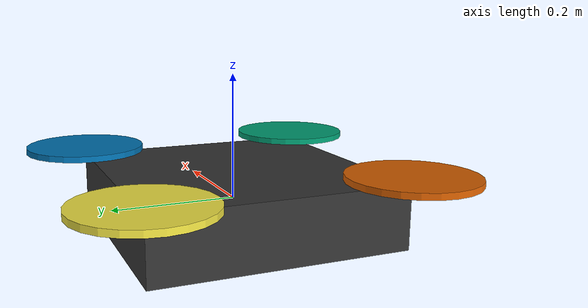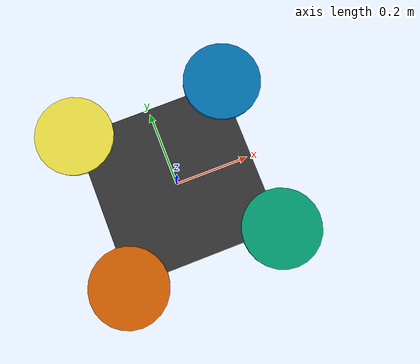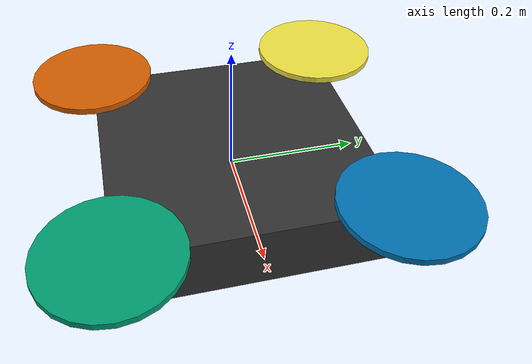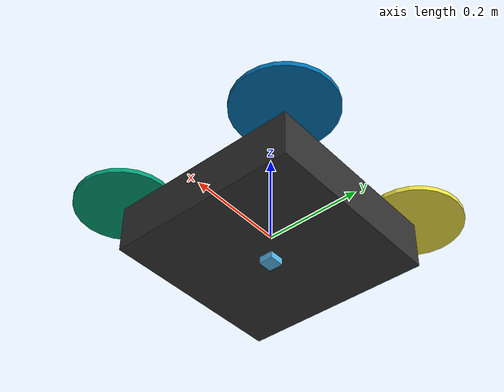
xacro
<?xml version="1.0"?>
<robot name="swarm_drone" xmlns:xacro="http://ros.org/wiki/xacro">

  <xacro:arg name="camera_rate" default="30"/>
  <xacro:arg name="camera_width" default="320"/>
  <xacro:arg name="camera_height" default="240"/>

  <link name="base_link">
    <inertial>
      <mass value="1.5"/>
      <origin xyz="0 0 0" rpy="0 0 0"/>
      <inertia ixx="0.02" ixy="0.0" ixz="0.0" iyy="0.02" iyz="0.0" izz="0.04"/>
    </inertial>
    <visual>
      <geometry>
        <box size="0.4 0.4 0.1"/>
      </geometry>
      <material name="dark_grey"><color rgba="0.2 0.2 0.2 1.0"/></material>
    </visual>
    <collision>
      <geometry><box size="0.4 0.4 0.1"/></geometry>
    </collision>
    <collision name="leg_fl">
      <origin xyz="0.15 0.15 -0.11" rpy="0 0 0"/>
      <geometry><box size="0.02 0.02 0.12"/></geometry>
    </collision>
    <collision name="leg_fr">
      <origin xyz="0.15 -0.15 -0.11" rpy="0 0 0"/>
      <geometry><box size="0.02 0.02 0.12"/></geometry>
    </collision>
    <collision name="leg_rl">
      <origin xyz="-0.15 0.15 -0.11" rpy="0 0 0"/>
      <geometry><box size="0.02 0.02 0.12"/></geometry>
    </collision>
    <collision name="leg_rr">
      <origin xyz="-0.15 -0.15 -0.11" rpy="0 0 0"/>
      <geometry><box size="0.02 0.02 0.12"/></geometry>
    </collision>
  </link>

  <link name="camera_link">
    <inertial>
      <mass value="0.05"/>
      <origin xyz="0 0 0" rpy="0 0 0"/>
      <inertia ixx="0.0001" ixy="0" ixz="0" iyy="0.0001" iyz="0" izz="0.0001"/>
    </inertial>
    <visual>
      <geometry><box size="0.03 0.03 0.03"/></geometry>
    </visual>
  </link>

  <joint name="camera_joint" type="fixed">
    <parent link="base_link"/>
    <child link="camera_link"/>
    <origin xyz="0 0 -0.05" rpy="0 1.570796 0"/>
  </joint>

  <!-- Gazebo Harmonic Native Camera Sensor -->
  <gazebo reference="camera_link">
    <sensor name="camera_sensor" type="camera">
      <always_on>true</always_on>
      <visualize>false</visualize>
      <update_rate>$(arg camera_rate)</update_rate>
      <topic>camera/image</topic>
      <camera>
        <horizontal_fov>1.047</horizontal_fov>
        <image>
          <width>$(arg camera_width)</width>
          <height>$(arg camera_height)</height>
          <format>R8G8B8</format>
        </image>
        <clip>
          <near>0.1</near>
          <far>100</far>
        </clip>
      </camera>
    </sensor>
  </gazebo>

  <xacro:macro name="rotor" params="motor_number x_pos y_pos">
    <link name="rotor_${motor_number}_link">
      <inertial>
        <mass value="0.05"/>
        <origin xyz="0 0 0" rpy="0 0 0"/>
        <inertia ixx="0.0001" ixy="0" ixz="0" iyy="0.0001" iyz="0" izz="0.0002"/>
      </inertial>
      <visual>
        <geometry><cylinder radius="0.1" length="0.01"/></geometry>
      </visual>
    </link>
    <joint name="rotor_${motor_number}_joint" type="continuous">
      <parent link="base_link"/>
      <child link="rotor_${motor_number}_link"/>
      <origin xyz="${x_pos} ${y_pos} 0.06" rpy="0 0 0"/>
      <axis xyz="0 0 1"/>
    </joint>
  </xacro:macro>

  <xacro:rotor motor_number="0" x_pos="0.2" y_pos="-0.2"/>
  <xacro:rotor motor_number="1" x_pos="-0.2" y_pos="0.2"/>
  <xacro:rotor motor_number="2" x_pos="0.2" y_pos="0.2"/>
  <xacro:rotor motor_number="3" x_pos="-0.2" y_pos="-0.2"/>

  <gazebo reference="base_link">
    <sensor name="imu_sensor" type="imu">
      <pose degrees="true">0 0 0 180 0 0</pose>
      <always_on>1</always_on>
      <update_rate>1000.0</update_rate>
    </sensor>
  </gazebo>

  <gazebo reference="base_link">
    <sensor name="ros_imu" type="imu">
      <always_on>1</always_on>
      <update_rate>200</update_rate>
      <topic>swarm_drone/ros_imu</topic>
      <gz_frame_id>base_link</gz_frame_id>
      <imu>
        <angular_velocity>
          <x><noise type="gaussian"><mean>0.0</mean><stddev>6.91e-4</stddev></noise></x>
          <y><noise type="gaussian"><mean>0.0</mean><stddev>6.91e-4</stddev></noise></y>
          <z><noise type="gaussian"><mean>0.0</mean><stddev>6.91e-4</stddev></noise></z>
        </angular_velocity>
        <linear_acceleration>
          <x><noise type="gaussian"><mean>0.0</mean><stddev>9.01e-3</stddev></noise></x>
          <y><noise type="gaussian"><mean>0.0</mean><stddev>9.01e-3</stddev></noise></y>
          <z><noise type="gaussian"><mean>0.0</mean><stddev>9.71e-3</stddev></noise></z>
        </linear_acceleration>
      </imu>
    </sensor>
  </gazebo>

  <gazebo>
    <plugin name="ArduPilotPlugin" filename="ArduPilotPlugin">
      <sensor>
        <type>rangefinder</type>
        <index>1</index>
        <topic>swarm_drone/rangefinder/scan</topic>
      </sensor>
      <fdm_addr>127.0.0.1</fdm_addr>
      <fdm_port_in>9002</fdm_port_in>
      <fdm_port_out>9003</fdm_port_out>

      <modelXYZToAirplaneXForwardZDown>0 0 0 3.141593 0 0</modelXYZToAirplaneXForwardZDown>
      <gazeboXYZToNED>0 0 0 3.141593 0 0</gazeboXYZToNED>

      <control channel="0">
        <type>VELOCITY</type>
        <offset>0</offset>
        <p_gain>0.20</p_gain>
        <i_gain>0</i_gain>
        <d_gain>0</d_gain>
        <i_max>0</i_max>
        <i_min>0</i_min>
        <cmd_max>2.5</cmd_max>
        <cmd_min>-2.5</cmd_min>
        <jointName>rotor_0_joint</jointName>
        <multiplier>838</multiplier>
      </control>

      <control channel="1">
        <type>VELOCITY</type>
        <offset>0</offset>
        <p_gain>0.20</p_gain>
        <i_gain>0</i_gain>
        <d_gain>0</d_gain>
        <i_max>0</i_max>
        <i_min>0</i_min>
        <cmd_max>2.5</cmd_max>
        <cmd_min>-2.5</cmd_min>
        <jointName>rotor_1_joint</jointName>
        <multiplier>838</multiplier>
      </control>

      <control channel="2">
        <type>VELOCITY</type>
        <offset>0</offset>
        <p_gain>0.20</p_gain>
        <i_gain>0</i_gain>
        <d_gain>0</d_gain>
        <i_max>0</i_max>
        <i_min>0</i_min>
        <cmd_max>2.5</cmd_max>
        <cmd_min>-2.5</cmd_min>
        <jointName>rotor_2_joint</jointName>
        <multiplier>-838</multiplier>
      </control>

      <control channel="3">
        <type>VELOCITY</type>
        <offset>0</offset>
        <p_gain>0.20</p_gain>
        <i_gain>0</i_gain>
        <d_gain>0</d_gain>
        <i_max>0</i_max>
        <i_min>0</i_min>
        <cmd_max>2.5</cmd_max>
        <cmd_min>-2.5</cmd_min>
        <jointName>rotor_3_joint</jointName>
        <multiplier>-838</multiplier>
      </control>
    </plugin>
  </gazebo>

  <xacro:macro name="rotor_aero" params="motor_number chirality">
    <plugin filename="gz-sim-lift-drag-system" name="gz::sim::systems::LiftDrag">
      <a0>0.3</a0>
      <alpha_stall>1.4</alpha_stall>
      <cla>4.2500</cla>
      <cda>0.10</cda>
      <cma>0.0</cma>
      <cla_stall>-0.025</cla_stall>
      <cda_stall>0.0</cda_stall>
      <cma_stall>0.0</cma_stall>
      <area>0.00314</area>
      <air_density>1.2041</air_density>
      <cp>0.084 0 0</cp>
      <forward>0 ${chirality} 0</forward>
      <upward>0 0 1</upward>
      <link_name>rotor_${motor_number}_link</link_name>
    </plugin>
    <plugin filename="gz-sim-lift-drag-system" name="gz::sim::systems::LiftDrag">
      <a0>0.3</a0>
      <alpha_stall>1.4</alpha_stall>
      <cla>4.2500</cla>
      <cda>0.10</cda>
      <cma>0.0</cma>
      <cla_stall>-0.025</cla_stall>
      <cda_stall>0.0</cda_stall>
      <cma_stall>0.0</cma_stall>
      <area>0.00314</area>
      <air_density>1.2041</air_density>
      <cp>-0.084 0 0</cp>
      <forward>0 ${-1 * chirality} 0</forward>
      <upward>0 0 1</upward>
      <link_name>rotor_${motor_number}_link</link_name>
    </plugin>
  </xacro:macro>

  <gazebo>
    <xacro:rotor_aero motor_number="0" chirality="1"/>
    <xacro:rotor_aero motor_number="1" chirality="1"/>
    <xacro:rotor_aero motor_number="2" chirality="-1"/>
    <xacro:rotor_aero motor_number="3" chirality="-1"/>
  </gazebo>

  <!-- Downward Rangefinder Link and Sensor (Invariant I-1) -->
  <link name="rangefinder_link">
    <inertial>
      <mass value="0.01"/>
      <origin xyz="0 0 0" rpy="0 0 0"/>
      <inertia ixx="0.00001" ixy="0" ixz="0" iyy="0.00001" iyz="0" izz="0.00001"/>
    </inertial>
  </link>

  <joint name="rangefinder_joint" type="fixed">
    <parent link="base_link"/>
    <child link="rangefinder_link"/>
    <origin xyz="0.05 0 -0.05" rpy="0 1.570796 0"/>
  </joint>

  <gazebo reference="rangefinder_link">
    <sensor name="rangefinder_sensor" type="gpu_lidar">
      <always_on>true</always_on>
      <update_rate>30</update_rate>
      <visualize>false</visualize>
      <topic>swarm_drone/rangefinder/scan</topic>
      <ray>
        <scan>
          <horizontal>
            <samples>1</samples>
            <resolution>1</resolution>
            <min_angle>-0.01</min_angle>
            <max_angle>0.01</max_angle>
          </horizontal>
          <vertical>
            <samples>1</samples>
            <resolution>1</resolution>
            <min_angle>-0.01</min_angle>
            <max_angle>0.01</max_angle>
          </vertical>
        </scan>
        <range>
          <min>0.01</min>
          <max>4.0</max>
          <resolution>0.01</resolution>
        </range>
      </ray>
    </sensor>
  </gazebo>

  <gazebo>
    <plugin
      filename="gz-sim-odometry-publisher-system"
      name="gz::sim::systems::OdometryPublisher">
      <odom_topic>/model/swarm_drone/odometry</odom_topic>
      <odom_frame>map</odom_frame>
      <robot_base_frame>swarm_drone/base_link</robot_base_frame>
      <dimensions>3</dimensions>
    </plugin>
  </gazebo>
</robot>
